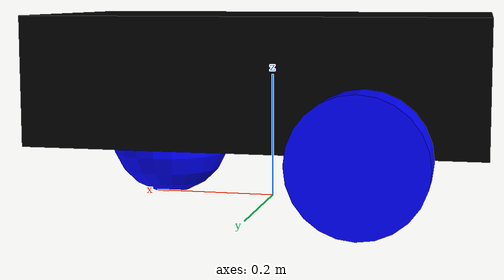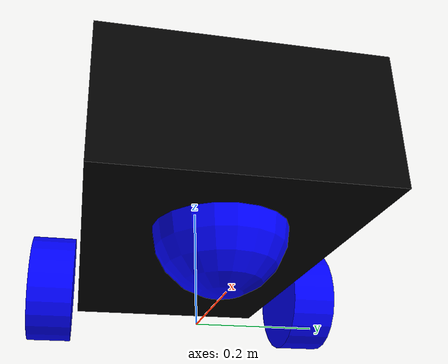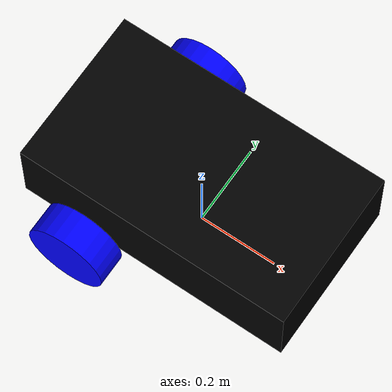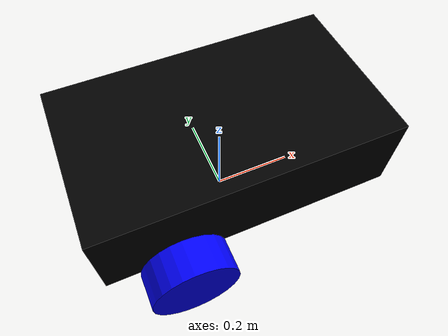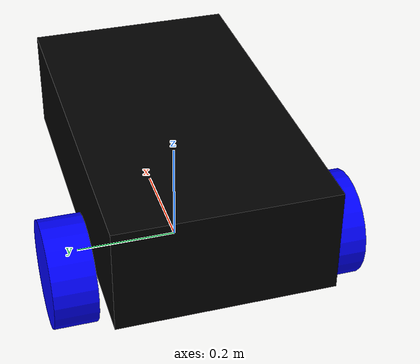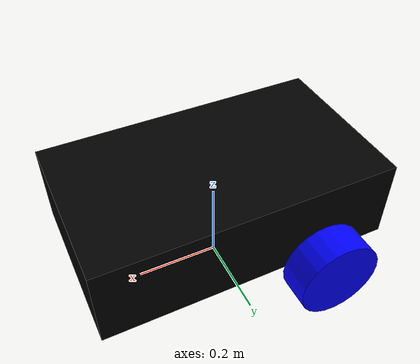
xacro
<?xml version="1.0"?>

<robot name="soprano" xmlns:xacro="http://www.ros.org/wiki/xacro">

    <xacro:include filename="$(find robot_description)/urdf/material.xacro"/>
    <xacro:include filename="$(find robot_description)/urdf/soprano_mobile_robot.xacro"/>
    <xacro:include filename="$(find robot_description)/urdf/soprano_gazebo.xacro"/>

</robot>

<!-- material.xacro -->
<robot xmlns:xacro="http://www.ros.org/wiki/xacro">

    <!-- Common materials -->

    <material name="black">
        <color rgba="0 0 0 1"/>
    </material>

    <material name="orange">
        <color rgba="1 0.647 0 1"/>
    </material>

    <material name="blue">
        <color rgba="0 0 1 1"/>
    </material>

</robot>

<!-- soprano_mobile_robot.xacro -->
<robot xmlns:xacro="http://www.ros.org/wiki/xacro">

    <xacro:property name="length"        value="0.7" />
    <xacro:property name="width"         value="0.4" />
    <xacro:property name="height"        value="0.2" />
    <xacro:property name="wheel_length"  value="0.08" />
    <xacro:property name="wheel_radius"  value="0.1" />

    <xacro:macro name="wheel_function" params="prefix">
        <link name="${prefix}_link">
            <visual>
                <geometry>
                  <cylinder length= "${wheel_length}" radius="${wheel_radius}" />
                </geometry>
            <origin xyz="0 0 ${wheel_radius / 2}" rpy="0 0 1"/>
                <material name="blue" />
            </visual>
        </link>
    </xacro:macro>

    <!-- exercise3_Adding Mass Moment of Inertia -->
    <xacro:macro name="box_inertia" params="m l w h xyz rpy">
        <inertial>
            <origin xyz="${xyz}" rpy="${rpy}" />
            <mass value="${m}" />
            <inertia ixx="${(m/12) * (h*h + l*l)}" ixy="0" ixz="0"
                     iyy="${(m/12) * (w*w + l*l)}" iyz="0"
                     izz="${(m/12) * (w*w + h*h)}" />
        </inertial>
    </xacro:macro>

    <xacro:macro name="cylinder_inertia" params="m r h xyz rpy">
        <inertial>
            <origin xyz="${xyz}" rpy="${rpy}" />
            <mass value="${m}" />
            <inertia ixx="${(m/12) * (3*r*r + h*h)}" ixy="0" ixz="0"
                     iyy="${(m/12) * (3*r*r + h*h)}" iyz="0"
                     izz="${(m/2) * (r*r)}" />
        </inertial>
    </xacro:macro>

    <xacro:macro name="sphere_inertia" params="m r xyz rpy">
        <inertial>
            <origin xyz="${xyz}" rpy="${rpy}" />
            <mass value="${m}" />
            <inertia ixx="${(2/5) * m * r * r}" ixy="0" ixz="0"
                     iyy="${(2/5) * m * r * r}" iyz="0"
                     izz="${(2/5) * m * r * r}" />
        </inertial>
    </xacro:macro>
    <!-- end of exercise  -->

   <!-- exercise1/add base_footprint -->
    <link name="base_footprint" />

    <link name="base_link">
        <visual>
            <geometry>
                <box size="${length} ${width} ${height}" />
            </geometry>
            <origin xyz="0 0 ${height/2}" rpy="0 0 0"/>
            <material name="black" />
        </visual>
        <!-- exercise5/add collision -->
         <collision>
            <geometry>
                <box size="${length} ${width} ${height}" />
            </geometry>
            <origin xyz="0 0 ${height/2}" rpy="0 0 0"/>
        </collision>
        <!-- exercise4/add inertia -->
        <xacro:box_inertia m="2.0" l="${length}" w="${width}" h="${height}" xyz="0 0 ${height / 2.0}" rpy="0 0 0" />
    </link>

    <joint name="base_joint" type="fixed">
        <parent link="base_footprint"/>
        <child  link="base_link"/>
        <origin xyz="0 0 ${wheel_radius}" rpy="0 0 0"/>
        <axis xyz ="0 0 0"/>
    </joint>

    <!-- end of exercise1 block-->

    <!-- exercise2/add_caster_wheel -->
    <link name="caster_wheel_link" >
        <visual>
            <geometry>
                <sphere radius="${wheel_radius}"/>
            </geometry>
            <origin xyz="0 0 0" rpy="0 0 0" />
            <material name="blue"/>
        </visual>
        <!-- exercise5/add collision -->
        <collision>
            <geometry>
                <sphere radius="${wheel_radius}"/>
            </geometry>
            <origin xyz="0 0 0" rpy="0 0 0" />
        </collision>
        <!-- exercise4/add inertia -->
        <xacro:sphere_inertia m="0.5" r="${wheel_radius / 2.0}" xyz="0 0 0" rpy="0 0 0" />
    </link>

    <joint name="caster_wheel_joint" type="fixed">
        <parent link="base_link"/>
        <child  link="caster_wheel_link"/>
        <origin xyz="${length/4}  0 0" rpy="0 0 0"/>
    </joint>

    <!-- end of exercise2 -->

    <link name="continuous_link">
        <visual>
            <geometry>
                <cylinder length= "${wheel_length}" radius="${wheel_radius}" />
            </geometry>
            <origin xyz="0 0 ${wheel_radius / 2}" rpy="0 0 0"/>
            <material name="blue"/>
        </visual>
        <!-- exercise5/add collision -->
        <collision>
            <geometry>
                <cylinder length= "${wheel_length}" radius="${wheel_radius}" />
            </geometry>
            <origin xyz="0 0 ${wheel_radius / 2}" rpy="0 0 0"/>
        </collision>
        <!-- exercise4/add inertia -->
        <xacro:cylinder_inertia m="0.5" r="${wheel_radius}" h="${wheel_length}" xyz="0 0 ${wheel_radius / 2}" rpy="0 0 0" />
    </link>

    <joint name="left_wheel_joint" type="continuous">
        <parent link="base_link"/>
        <child  link="continuous_link"/>
        <origin xyz="${-(length / 4)} ${width/2} 0" rpy="${-pi / 2.0} 0 0"/>
        <axis xyz ="0 0 1"/>
    </joint>

    <link name="continuous2_link">
        <visual>
            <geometry>
                <cylinder length= "${wheel_length}" radius="${wheel_radius}" />
            </geometry>
            <origin xyz="0 0 ${wheel_radius / 2}" rpy="0 0 0"/>
            <material name="blue"/>
        </visual>
        <!-- exercise5/add collision -->
        <collision>
            <geometry>
                <cylinder length= "${wheel_length}" radius="${wheel_radius}" />
            </geometry>
            <origin xyz="0 0 ${wheel_radius / 2}" rpy="0 0 0"/>
            <material name="blue"/>
        </collision>
        <!-- exercise4/add inertia -->
        <xacro:cylinder_inertia m="0.5" r="${wheel_radius}" h="${wheel_length}" xyz="0 0 ${wheel_radius / 2}" rpy="0 0 0" />
    </link>

    <joint name="right_wheel_joint" type="continuous">
        <parent link="base_link"/>
        <child  link="continuous2_link"/>
        <origin xyz="${-(length / 4)} ${-(width / 2)} 0" rpy="${pi/2} 0 0"/>
        <axis xyz ="0 0 -1"/>
    </joint>

</robot>
